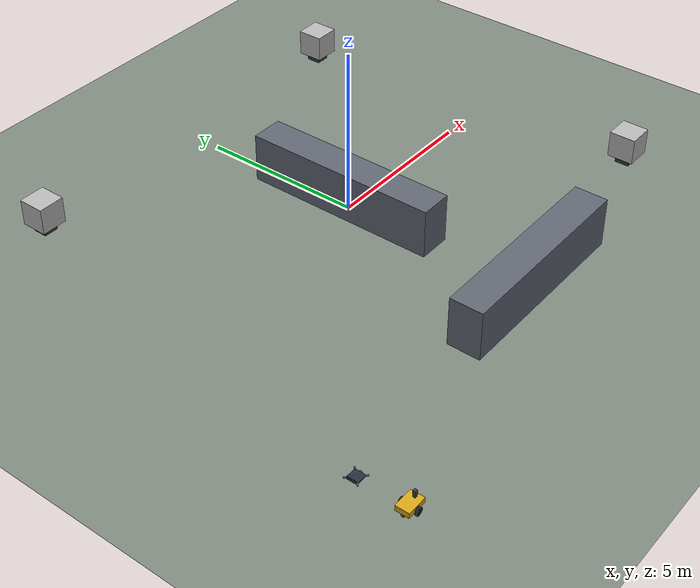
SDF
<?xml version="1.0"?>
<sdf version="1.9">
  <world name="mission_arena">

    <physics name="default_physics" type="ode">
      <max_step_size>0.004</max_step_size>
      <real_time_factor>1.0</real_time_factor>
    </physics>

    <plugin filename="gz-sim-physics-system" name="gz::sim::systems::Physics"/>
    <plugin filename="gz-sim-user-commands-system" name="gz::sim::systems::UserCommands"/>
    <plugin filename="gz-sim-scene-broadcaster-system"
            name="gz::sim::systems::SceneBroadcaster"/>
    <!-- Required for the camera sensors to produce data. Without it the
         mission has no sensing at all: the cameras are its only input. -->
    <plugin filename="gz-sim-sensors-system" name="gz::sim::systems::Sensors">
      <render_engine>ogre2</render_engine>
    </plugin>
    <plugin filename="gz-sim-imu-system" name="gz::sim::systems::Imu"/>

    <gravity>0 0 -9.81</gravity>

    <scene>
      <ambient>0.7 0.7 0.7 1</ambient>
      <background>0.55 0.65 0.80 1</background>
      <grid>false</grid>
      <shadows>true</shadows>
    </scene>

    <!-- Near-overhead sun. A low sun casts long station shadows across the
         ground that can merge with a QR quiet zone and cost detections. -->
    <light type="directional" name="sun">
      <cast_shadows>true</cast_shadows>
      <pose>0 0 12 0 0 0</pose>
      <diffuse>0.9 0.9 0.9 1</diffuse>
      <specular>0.25 0.25 0.25 1</specular>
      <attenuation>
        <range>200</range>
        <constant>0.9</constant>
        <linear>0.01</linear>
        <quadratic>0.001</quadratic>
      </attenuation>
      <direction>-0.2 0.25 -0.95</direction>
    </light>

    <model name="ground_plane">
      <static>true</static>
      <link name="link">
        <collision name="collision">
          <geometry><plane><normal>0 0 1</normal><size>60 60</size></plane></geometry>
        </collision>
        <visual name="visual">
          <geometry><plane><normal>0 0 1</normal><size>60 60</size></plane></geometry>
          <material>
            <ambient>0.42 0.45 0.42 1</ambient>
            <diffuse>0.50 0.54 0.50 1</diffuse>
            <specular>0.02 0.02 0.02 1</specular>
          </material>
        </visual>
      </link>
    </model>

    <!-- ================= targets ================= -->
    <include>
      <uri>model://target_station_target_1</uri>
      <name>target_station_1</name>
      <pose>6 6 0 0 0 0</pose>
    </include>
    <include>
      <uri>model://target_station_target_2</uri>
      <name>target_station_2</name>
      <pose>7 -5 0 0 0 0</pose>
    </include>
    <include>
      <uri>model://target_station_target_3</uri>
      <name>target_station_3</name>
      <pose>-6 6 0 0 0 0</pose>
    </include>

    <!-- ================= obstacles ================= -->
    <model name="obstacle_a">
      <static>true</static>
      <pose>0 -6 0.75 0 0 0</pose>
      <link name="link">
        <collision name="collision">
          <geometry><box><size>6.0 1.0 1.5</size></box></geometry>
        </collision>
        <visual name="visual">
          <geometry><box><size>6.0 1.0 1.5</size></box></geometry>
          <material>
            <ambient>0.25 0.26 0.30 1</ambient>
            <diffuse>0.38 0.40 0.45 1</diffuse>
          </material>
        </visual>
      </link>
    </model>

    <model name="obstacle_b">
      <static>true</static>
      <pose>0 0 0.75 0 0 0</pose>
      <link name="link">
        <collision name="collision">
          <geometry><box><size>1.0 6.0 1.5</size></box></geometry>
        </collision>
        <visual name="visual">
          <geometry><box><size>1.0 6.0 1.5</size></box></geometry>
          <material>
            <ambient>0.25 0.26 0.30 1</ambient>
            <diffuse>0.38 0.40 0.45 1</diffuse>
          </material>
        </visual>
      </link>
    </model>

    <!-- ================= vehicles ================= -->
    <include>
      <uri>model://scout_drone</uri>
      <name>scout_drone</name>
      <pose>-8 -6.5 0.06 0 0 0</pose>
    </include>
    <include>
      <uri>model://mission_rover</uri>
      <name>mission_rover</name>
      <pose>-8 -8 0 0 0 0</pose>
    </include>

  </world>
</sdf>

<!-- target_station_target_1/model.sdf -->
<!-- GENERATED by scripts/generate_qr_targets.py - do not edit by hand. -->
<sdf version="1.9">
  <model name="target_station_target_1">
    <static>true</static>
    <link name="body">
      <!-- Structural core of the station. White so the plate quiet zone
           blends into it if a face is ever viewed past the plate edge. -->
      <visual name="core">
        <pose>0 0 0.6500 0 0 0</pose>
        <geometry>
          <box><size>0.8000 0.8000 0.8000</size></box>
        </geometry>
        <material>
          <ambient>0.9 0.9 0.9 1</ambient>
          <diffuse>0.95 0.95 0.95 1</diffuse>
          <specular>0.05 0.05 0.05 1</specular>
        </material>
      </visual>
      <visual name="plate_top">
        <pose>0 0 1.0510 0 0 0</pose>
        <geometry>
          <mesh>
            <uri>model://target_station_target_1/meshes/plate.obj</uri>
            <scale>0.8000 0.8000 1</scale>
          </mesh>
        </geometry>
      </visual>
      <visual name="plate_x_pos">
        <pose>0.4010 0 0.6500 0 1.5707963 0</pose>
        <geometry>
          <mesh>
            <uri>model://target_station_target_1/meshes/plate.obj</uri>
            <scale>0.8000 0.8000 1</scale>
          </mesh>
        </geometry>
      </visual>
      <visual name="plate_x_neg">
        <pose>-0.4010 0 0.6500 0 -1.5707963 0</pose>
        <geometry>
          <mesh>
            <uri>model://target_station_target_1/meshes/plate.obj</uri>
            <scale>0.8000 0.8000 1</scale>
          </mesh>
        </geometry>
      </visual>
      <visual name="plate_y_pos">
        <pose>0 0.4010 0.6500 -1.5707963 0 0</pose>
        <geometry>
          <mesh>
            <uri>model://target_station_target_1/meshes/plate.obj</uri>
            <scale>0.8000 0.8000 1</scale>
          </mesh>
        </geometry>
      </visual>
      <visual name="plate_y_neg">
        <pose>0 -0.4010 0.6500 1.5707963 0 0</pose>
        <geometry>
          <mesh>
            <uri>model://target_station_target_1/meshes/plate.obj</uri>
            <scale>0.8000 0.8000 1</scale>
          </mesh>
        </geometry>
      </visual>

      <visual name="pedestal">
        <pose>0 0 0.1250 0 0 0</pose>
        <geometry>
          <box>
            <size>0.4400 0.4400 0.2500</size>
          </box>
        </geometry>
        <material>
          <ambient>0.15 0.15 0.18 1</ambient>
          <diffuse>0.20 0.20 0.24 1</diffuse>
        </material>
      </visual>

      <!-- The station is a real obstacle: the drone must map it from its camera and
           the planner must route the rover around it. -->
      <collision name="core_collision">
        <pose>0 0 0.6500 0 0 0</pose>
        <geometry>
          <box><size>0.8000 0.8000 0.8000</size></box>
        </geometry>
      </collision>
      <collision name="pedestal_collision">
        <pose>0 0 0.1250 0 0 0</pose>
        <geometry>
          <box>
            <size>0.4400 0.4400 0.2500</size>
          </box>
        </geometry>
      </collision>
    </link>
  </model>
</sdf>

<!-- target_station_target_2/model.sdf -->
<!-- GENERATED by scripts/generate_qr_targets.py - do not edit by hand. -->
<sdf version="1.9">
  <model name="target_station_target_2">
    <static>true</static>
    <link name="body">
      <!-- Structural core of the station. White so the plate quiet zone
           blends into it if a face is ever viewed past the plate edge. -->
      <visual name="core">
        <pose>0 0 0.6500 0 0 0</pose>
        <geometry>
          <box><size>0.8000 0.8000 0.8000</size></box>
        </geometry>
        <material>
          <ambient>0.9 0.9 0.9 1</ambient>
          <diffuse>0.95 0.95 0.95 1</diffuse>
          <specular>0.05 0.05 0.05 1</specular>
        </material>
      </visual>
      <visual name="plate_top">
        <pose>0 0 1.0510 0 0 0</pose>
        <geometry>
          <mesh>
            <uri>model://target_station_target_2/meshes/plate.obj</uri>
            <scale>0.8000 0.8000 1</scale>
          </mesh>
        </geometry>
      </visual>
      <visual name="plate_x_pos">
        <pose>0.4010 0 0.6500 0 1.5707963 0</pose>
        <geometry>
          <mesh>
            <uri>model://target_station_target_2/meshes/plate.obj</uri>
            <scale>0.8000 0.8000 1</scale>
          </mesh>
        </geometry>
      </visual>
      <visual name="plate_x_neg">
        <pose>-0.4010 0 0.6500 0 -1.5707963 0</pose>
        <geometry>
          <mesh>
            <uri>model://target_station_target_2/meshes/plate.obj</uri>
            <scale>0.8000 0.8000 1</scale>
          </mesh>
        </geometry>
      </visual>
      <visual name="plate_y_pos">
        <pose>0 0.4010 0.6500 -1.5707963 0 0</pose>
        <geometry>
          <mesh>
            <uri>model://target_station_target_2/meshes/plate.obj</uri>
            <scale>0.8000 0.8000 1</scale>
          </mesh>
        </geometry>
      </visual>
      <visual name="plate_y_neg">
        <pose>0 -0.4010 0.6500 1.5707963 0 0</pose>
        <geometry>
          <mesh>
            <uri>model://target_station_target_2/meshes/plate.obj</uri>
            <scale>0.8000 0.8000 1</scale>
          </mesh>
        </geometry>
      </visual>

      <visual name="pedestal">
        <pose>0 0 0.1250 0 0 0</pose>
        <geometry>
          <box>
            <size>0.4400 0.4400 0.2500</size>
          </box>
        </geometry>
        <material>
          <ambient>0.15 0.15 0.18 1</ambient>
          <diffuse>0.20 0.20 0.24 1</diffuse>
        </material>
      </visual>

      <!-- The station is a real obstacle: the drone must map it from its camera and
           the planner must route the rover around it. -->
      <collision name="core_collision">
        <pose>0 0 0.6500 0 0 0</pose>
        <geometry>
          <box><size>0.8000 0.8000 0.8000</size></box>
        </geometry>
      </collision>
      <collision name="pedestal_collision">
        <pose>0 0 0.1250 0 0 0</pose>
        <geometry>
          <box>
            <size>0.4400 0.4400 0.2500</size>
          </box>
        </geometry>
      </collision>
    </link>
  </model>
</sdf>

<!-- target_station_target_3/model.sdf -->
<!-- GENERATED by scripts/generate_qr_targets.py - do not edit by hand. -->
<sdf version="1.9">
  <model name="target_station_target_3">
    <static>true</static>
    <link name="body">
      <!-- Structural core of the station. White so the plate quiet zone
           blends into it if a face is ever viewed past the plate edge. -->
      <visual name="core">
        <pose>0 0 0.6500 0 0 0</pose>
        <geometry>
          <box><size>0.8000 0.8000 0.8000</size></box>
        </geometry>
        <material>
          <ambient>0.9 0.9 0.9 1</ambient>
          <diffuse>0.95 0.95 0.95 1</diffuse>
          <specular>0.05 0.05 0.05 1</specular>
        </material>
      </visual>
      <visual name="plate_top">
        <pose>0 0 1.0510 0 0 0</pose>
        <geometry>
          <mesh>
            <uri>model://target_station_target_3/meshes/plate.obj</uri>
            <scale>0.8000 0.8000 1</scale>
          </mesh>
        </geometry>
      </visual>
      <visual name="plate_x_pos">
        <pose>0.4010 0 0.6500 0 1.5707963 0</pose>
        <geometry>
          <mesh>
            <uri>model://target_station_target_3/meshes/plate.obj</uri>
            <scale>0.8000 0.8000 1</scale>
          </mesh>
        </geometry>
      </visual>
      <visual name="plate_x_neg">
        <pose>-0.4010 0 0.6500 0 -1.5707963 0</pose>
        <geometry>
          <mesh>
            <uri>model://target_station_target_3/meshes/plate.obj</uri>
            <scale>0.8000 0.8000 1</scale>
          </mesh>
        </geometry>
      </visual>
      <visual name="plate_y_pos">
        <pose>0 0.4010 0.6500 -1.5707963 0 0</pose>
        <geometry>
          <mesh>
            <uri>model://target_station_target_3/meshes/plate.obj</uri>
            <scale>0.8000 0.8000 1</scale>
          </mesh>
        </geometry>
      </visual>
      <visual name="plate_y_neg">
        <pose>0 -0.4010 0.6500 1.5707963 0 0</pose>
        <geometry>
          <mesh>
            <uri>model://target_station_target_3/meshes/plate.obj</uri>
            <scale>0.8000 0.8000 1</scale>
          </mesh>
        </geometry>
      </visual>

      <visual name="pedestal">
        <pose>0 0 0.1250 0 0 0</pose>
        <geometry>
          <box>
            <size>0.4400 0.4400 0.2500</size>
          </box>
        </geometry>
        <material>
          <ambient>0.15 0.15 0.18 1</ambient>
          <diffuse>0.20 0.20 0.24 1</diffuse>
        </material>
      </visual>

      <!-- The station is a real obstacle: the drone must map it from its camera and
           the planner must route the rover around it. -->
      <collision name="core_collision">
        <pose>0 0 0.6500 0 0 0</pose>
        <geometry>
          <box><size>0.8000 0.8000 0.8000</size></box>
        </geometry>
      </collision>
      <collision name="pedestal_collision">
        <pose>0 0 0.1250 0 0 0</pose>
        <geometry>
          <box>
            <size>0.4400 0.4400 0.2500</size>
          </box>
        </geometry>
      </collision>
    </link>
  </model>
</sdf>

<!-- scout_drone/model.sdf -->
<sdf version="1.9">
  <model name="scout_drone">
    <pose>0 0 0.06 0 0 0</pose>

    <link name="base_link">
      <gravity>false</gravity>

      <inertial>
        <mass>1.5</mass>
        <inertia>
          <ixx>0.0217</ixx><ixy>0</ixy><ixz>0</ixz>
          <iyy>0.0217</iyy><iyz>0</iyz>
          <izz>0.0400</izz>
        </inertia>
      </inertial>

      <visual name="body">
        <geometry><box><size>0.30 0.30 0.09</size></box></geometry>
        <material>
          <ambient>0.10 0.12 0.16 1</ambient>
          <diffuse>0.15 0.18 0.24 1</diffuse>
        </material>
      </visual>
      <visual name="arm_a">
        <pose>0 0 0.01 0 0 0.7853982</pose>
        <geometry><box><size>0.60 0.04 0.02</size></box></geometry>
        <material><diffuse>0.35 0.35 0.38 1</diffuse></material>
      </visual>
      <visual name="arm_b">
        <pose>0 0 0.01 0 0 -0.7853982</pose>
        <geometry><box><size>0.60 0.04 0.02</size></box></geometry>
        <material><diffuse>0.35 0.35 0.38 1</diffuse></material>
      </visual>
      <!-- Bright nose marker: makes heading obvious in the Gazebo GUI. -->
      <visual name="nose">
        <pose>0.16 0 0.02 0 0 0</pose>
        <geometry><box><size>0.06 0.06 0.03</size></box></geometry>
        <material><diffuse>0.90 0.25 0.10 1</diffuse></material>
      </visual>

      <collision name="body_collision">
        <geometry><box><size>0.30 0.30 0.09</size></box></geometry>
      </collision>

      <sensor name="down_camera" type="camera">
        <pose>0.10 0 -0.08 0 0.5235988 0</pose>
        <always_on>1</always_on>
        <update_rate>6</update_rate>
        <visualize>false</visualize>
        <topic>/drone/camera/image</topic>
        <!-- Pin the published frame_id instead of letting gz derive a scoped
             sensor name: qr_detector_node looks this frame up in TF. -->
        <gz_frame_id>drone/camera_optical_frame</gz_frame_id>
        <camera>
          <!-- Must match drone.camera in config/mission.yaml. -->
          <horizontal_fov>1.047</horizontal_fov>
          <image>
            <width>1280</width>
            <height>960</height>
            <format>R8G8B8</format>
          </image>
          <clip><near>0.1</near><far>60</far></clip>
          <optical_frame_id>drone/camera_optical_frame</optical_frame_id>
        </camera>
      </sensor>

    </link>

    <!-- Body-frame twist input. drone_explorer_node rotates its map-frame
         velocity into the body frame before publishing here. -->
    <plugin filename="gz-sim-velocity-control-system"
            name="gz::sim::systems::VelocityControl">
      <topic>/model/scout_drone/cmd_vel</topic>
    </plugin>

    <plugin filename="gz-sim-odometry-publisher-system"
            name="gz::sim::systems::OdometryPublisher">
      <odom_frame>drone/odom</odom_frame>
      <robot_base_frame>drone/base_link</robot_base_frame>
      <odom_topic>/model/scout_drone/odometry</odom_topic>
      <tf_topic>/model/scout_drone/tf</tf_topic>
      <dimensions>3</dimensions>
      <odom_publish_frequency>50</odom_publish_frequency>
    </plugin>
  </model>
</sdf>

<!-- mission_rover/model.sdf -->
<sdf version="1.9">
  <model name="mission_rover">
    <pose>0 0 0 0 0 0</pose>

    <link name="base_link">
      <inertial>
        <pose>0 0 0.20 0 0 0</pose>
        <mass>9.0</mass>
        <inertia>
          <ixx>0.150</ixx><ixy>0</ixy><ixz>0</ixz>
          <iyy>0.320</iyy><iyz>0</iyz>
          <izz>0.400</izz>
        </inertia>
      </inertial>

      <visual name="chassis">
        <pose>0 0 0.20 0 0 0</pose>
        <geometry><box><size>0.60 0.40 0.16</size></box></geometry>
        <material>
          <ambient>0.20 0.18 0.10 1</ambient>
          <diffuse>0.85 0.65 0.10 1</diffuse>
        </material>
      </visual>
      <visual name="mast">
        <pose>0.18 0 0.36 0 0 0</pose>
        <geometry><box><size>0.08 0.08 0.24</size></box></geometry>
        <material><diffuse>0.25 0.25 0.28 1</diffuse></material>
      </visual>
      <collision name="chassis_collision">
        <pose>0 0 0.20 0 0 0</pose>
        <geometry><box><size>0.60 0.40 0.16</size></box></geometry>
      </collision>

      <collision name="caster_front">
        <pose>0.24 0 0.06 0 0 0</pose>
        <geometry><sphere><radius>0.06</radius></sphere></geometry>
        <surface>
          <friction><ode><mu>0.0</mu><mu2>0.0</mu2></ode></friction>
        </surface>
      </collision>
      <visual name="caster_front_visual">
        <pose>0.24 0 0.06 0 0 0</pose>
        <geometry><sphere><radius>0.06</radius></sphere></geometry>
        <material><diffuse>0.2 0.2 0.2 1</diffuse></material>
      </visual>
      <collision name="caster_rear">
        <pose>-0.24 0 0.06 0 0 0</pose>
        <geometry><sphere><radius>0.06</radius></sphere></geometry>
        <surface>
          <friction><ode><mu>0.0</mu><mu2>0.0</mu2></ode></friction>
        </surface>
      </collision>
      <visual name="caster_rear_visual">
        <pose>-0.24 0 0.06 0 0 0</pose>
        <geometry><sphere><radius>0.06</radius></sphere></geometry>
        <material><diffuse>0.2 0.2 0.2 1</diffuse></material>
      </visual>

      <sensor name="front_camera" type="camera">
        <pose>0.22 0 0.55 0 0 0</pose>
        <always_on>1</always_on>
        <update_rate>6</update_rate>
        <visualize>false</visualize>
        <topic>/rover/camera/image</topic>
        <gz_frame_id>rover/camera_optical_frame</gz_frame_id>
        <camera>
          <!-- Must match rover.camera in config/mission.yaml. -->
          <horizontal_fov>1.20</horizontal_fov>
          <image>
            <width>640</width>
            <height>480</height>
            <format>R8G8B8</format>
          </image>
          <clip><near>0.05</near><far>30</far></clip>
          <optical_frame_id>rover/camera_optical_frame</optical_frame_id>
        </camera>
      </sensor>

    </link>

    <link name="left_wheel">
      <pose>0 0.23 0.12 -1.5707963 0 0</pose>
      <inertial>
        <mass>0.7</mass>
        <inertia>
          <ixx>0.0031</ixx><ixy>0</ixy><ixz>0</ixz>
          <iyy>0.0031</iyy><iyz>0</iyz>
          <izz>0.0050</izz>
        </inertia>
      </inertial>
      <visual name="visual">
        <geometry><cylinder><radius>0.12</radius><length>0.06</length></cylinder></geometry>
        <material><diffuse>0.1 0.1 0.1 1</diffuse></material>
      </visual>
      <collision name="collision">
        <geometry><cylinder><radius>0.12</radius><length>0.06</length></cylinder></geometry>
        <surface>
          <friction><ode><mu>1.2</mu><mu2>1.2</mu2></ode></friction>
        </surface>
      </collision>
    </link>

    <link name="right_wheel">
      <pose>0 -0.23 0.12 -1.5707963 0 0</pose>
      <inertial>
        <mass>0.7</mass>
        <inertia>
          <ixx>0.0031</ixx><ixy>0</ixy><ixz>0</ixz>
          <iyy>0.0031</iyy><iyz>0</iyz>
          <izz>0.0050</izz>
        </inertia>
      </inertial>
      <visual name="visual">
        <geometry><cylinder><radius>0.12</radius><length>0.06</length></cylinder></geometry>
        <material><diffuse>0.1 0.1 0.1 1</diffuse></material>
      </visual>
      <collision name="collision">
        <geometry><cylinder><radius>0.12</radius><length>0.06</length></cylinder></geometry>
        <surface>
          <friction><ode><mu>1.2</mu><mu2>1.2</mu2></ode></friction>
        </surface>
      </collision>
    </link>

    <joint name="left_wheel_joint" type="revolute">
      <parent>base_link</parent>
      <child>left_wheel</child>
      <axis>
        <xyz expressed_in="__model__">0 1 0</xyz>
        <limit><lower>-1e16</lower><upper>1e16</upper></limit>
      </axis>
    </joint>
    <joint name="right_wheel_joint" type="revolute">
      <parent>base_link</parent>
      <child>right_wheel</child>
      <axis>
        <xyz expressed_in="__model__">0 1 0</xyz>
        <limit><lower>-1e16</lower><upper>1e16</upper></limit>
      </axis>
    </joint>

    <plugin filename="gz-sim-diff-drive-system"
            name="gz::sim::systems::DiffDrive">
      <left_joint>left_wheel_joint</left_joint>
      <right_joint>right_wheel_joint</right_joint>
      <wheel_separation>0.46</wheel_separation>
      <wheel_radius>0.12</wheel_radius>
      <!-- Headroom above rover.max_linear_velocity/max_angular_velocity so the
           follower's limits bind, not the plugin's. -->
      <max_linear_acceleration>1.5</max_linear_acceleration>
      <max_angular_acceleration>4.0</max_angular_acceleration>
      <topic>/model/mission_rover/cmd_vel</topic>
      <odom_topic>/model/mission_rover/wheel_odometry</odom_topic>
      <tf_topic>/model/mission_rover/wheel_tf</tf_topic>
      <frame_id>rover/odom</frame_id>
      <child_frame_id>rover/base_link</child_frame_id>
      <odom_publish_frequency>50</odom_publish_frequency>
    </plugin>

    <plugin filename="gz-sim-odometry-publisher-system"
            name="gz::sim::systems::OdometryPublisher">
      <odom_frame>rover/odom</odom_frame>
      <robot_base_frame>rover/base_link</robot_base_frame>
      <odom_topic>/model/mission_rover/odometry</odom_topic>
      <tf_topic>/model/mission_rover/tf</tf_topic>
      <dimensions>2</dimensions>
      <odom_publish_frequency>50</odom_publish_frequency>
    </plugin>

  </model>
</sdf>
